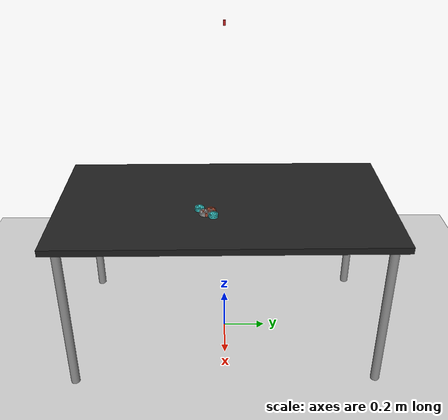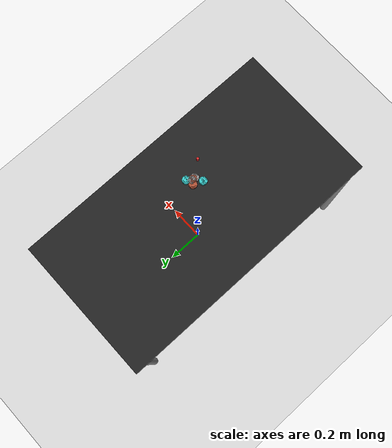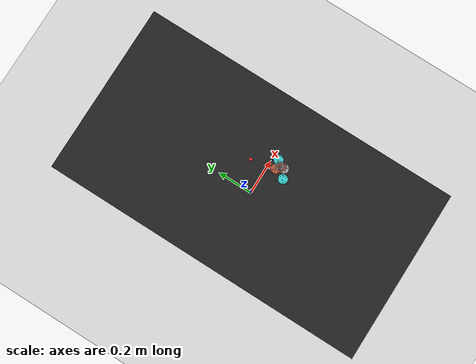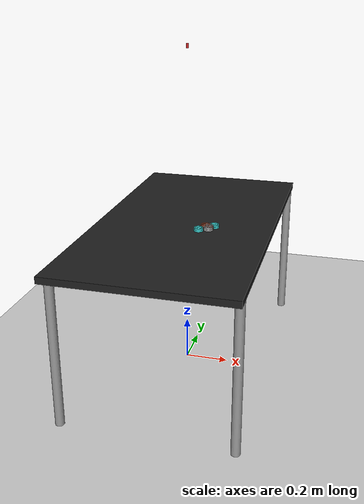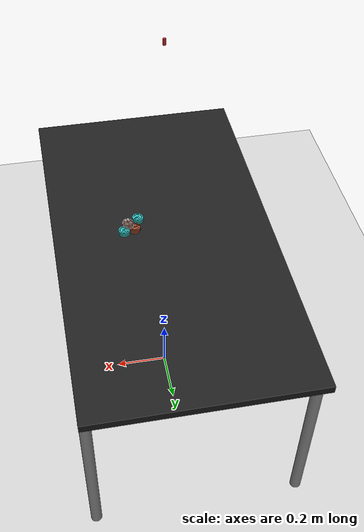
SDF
<?xml version="1.0" ?>
<sdf version="1.5">
  <world name="default">
    <!-- A global light source -->
    <include>
      <uri>model://sun</uri>
    </include>

    <!-- A ground plane -->
    <include>
      <uri>model://ground_plane</uri>
    </include>

    <light name='spotlight' type='spot'>
      <pose frame=''>0 0 2 0 -0 0</pose>
      <diffuse>0.5 0.5 0.5 1</diffuse>
      <specular>0.1 0.1 0.1 1</specular>
      <direction>0 0 -1</direction>
      <attenuation>
        <range>20</range>
        <constant>0.5</constant>
        <linear>0.01</linear>
        <quadratic>0.001</quadratic>
      </attenuation>
      <cast_shadows>1</cast_shadows>
      <spot>
        <inner_angle>0.5</inner_angle>
        <outer_angle>2</outer_angle>
        <falloff>1</falloff>
      </spot>
    </light>

    <include>
      <uri>model://my_table</uri>
      <pose frame=''>0 0 0 0 -0 1.57</pose>
    </include>

    <include>
      <uri>model://my_camera</uri>
      <pose>0 0 1.5 0 1.57 0</pose>
    </include>

    <!-- This portion generated by python script -->

		<include>
    	<uri>model://etherium</uri>
    	<pose frame=''>0.12 -0.09 0.715 0 -0 -1.6</pose>
    </include>

		<include>
    	<uri>model://litecoin</uri>
    	<pose frame=''>0.14 -0.05 0.715 0 -0 -1.6</pose>
    </include>

		<include>
    	<uri>model://zcash</uri>
    	<pose frame=''>0.1 -0.06 0.715 0 -0 -1.6</pose>
    </include>

		<include>
    	<uri>model://monero</uri>
    	<pose frame=''>0.12 -0.08 0.715 0 -0 -1.6</pose>
    </include>

		<include>
    	<uri>model://etherium</uri>
    	<pose frame=''>0.12 -0.07 0.715 0 -0 -1.6</pose>
    </include>

		<include>
    	<uri>model://litecoin</uri>
    	<pose frame=''>0.08 -0.11 0.715 0 -0 -1.6</pose>
    </include>

  </world>
</sdf>

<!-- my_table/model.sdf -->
<sdf version="1.5">
  <model name="my_table">
    <static>true</static>
    <link name="my_table_link">
      <collision name="surface">
        <pose>0 0 0.7 0 0 0</pose>
        <geometry>
          <box>
            <size>1.5 0.8 0.03</size>
          </box>
        </geometry>
        <surface>
          <friction>
            <ode>
              <mu>0.6</mu>
              <mu2>0.6</mu2>
            </ode>
          </friction>
        </surface>
      </collision>
      <visual name="visual1">
        <pose>0 0 0.7 0 0 0</pose>
        <geometry>
          <box>
            <size>1.5 0.8 0.03</size>
          </box>
        </geometry>
        <material>
          <script>
            <uri>file://media/materials/scripts/gazebo.material</uri>
            <name>Gazebo/FlatBlack</name>
          </script>
        </material>
      </visual>
      <collision name="front_left_leg">
        <pose>0.68 0.38 0.35 0 0 0</pose>
        <geometry>
          <cylinder>
            <radius>0.02</radius>
            <length>0.7</length>
          </cylinder>
        </geometry>
      </collision>
      <visual name="front_left_leg">
        <pose>0.68 0.38 0.35 0 0 0</pose>
        <geometry>
          <cylinder>
            <radius>0.02</radius>
            <length>0.7</length>
          </cylinder>
        </geometry>
        <material>
          <script>
            <uri>file://media/materials/scripts/gazebo.material</uri>
            <name>Gazebo/Grey</name>
          </script>
        </material>
      </visual>
      <collision name="front_right_leg">
        <pose>0.68 -0.38 0.35 0 0 0</pose>
        <geometry>
          <cylinder>
            <radius>0.02</radius>
            <length>0.7</length>
          </cylinder>
        </geometry>
      </collision>
      <visual name="front_right_leg">
        <pose>0.68 -0.38 0.35 0 0 0</pose>
        <geometry>
          <cylinder>
            <radius>0.02</radius>
            <length>0.7</length>
          </cylinder>
        </geometry>
        <material>
          <script>
            <uri>file://media/materials/scripts/gazebo.material</uri>
            <name>Gazebo/Grey</name>
          </script>
        </material>
      </visual>
      <collision name="back_right_leg">
        <pose>-0.68 -0.38 0.35 0 0 0</pose>
        <geometry>
          <cylinder>
            <radius>0.02</radius>
            <length>0.7</length>
          </cylinder>
        </geometry>
      </collision>
      <visual name="back_right_leg">
        <pose>-0.68 -0.38 0.35 0 0 0</pose>
        <geometry>
          <cylinder>
            <radius>0.02</radius>
            <length>0.7</length>
          </cylinder>
        </geometry>
        <material>
          <script>
            <uri>file://media/materials/scripts/gazebo.material</uri>
            <name>Gazebo/Grey</name>
          </script>
        </material>
      </visual>
      <collision name="back_left_leg">
        <pose>-0.68 0.38 0.35 0 0 0</pose>
        <geometry>
          <cylinder>
            <radius>0.02</radius>
            <length>0.7</length>
          </cylinder>
        </geometry>
      </collision>
      <visual name="back_left_leg">
        <pose>-0.68 0.38 0.35 0 0 0</pose>
        <geometry>
          <cylinder>
            <radius>0.02</radius>
            <length>0.7</length>
          </cylinder>
        </geometry>
        <material>
          <script>
            <uri>file://media/materials/scripts/gazebo.material</uri>
            <name>Gazebo/Grey</name>
          </script>
        </material>
      </visual>
    </link>
  </model>
</sdf>

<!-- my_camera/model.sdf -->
<sdf version="1.5">
  <model name='my_camera'>
    <static>true</static>
    <pose>0 0 0 0 0 0</pose>
    <link name='my_camera_link'>
      <visual name='visual'>
        <pose frame=''>0 0 0 0 1.57 0</pose>
        <geometry>
          <cylinder>
            <radius>0.005</radius>
            <length>0.02</length>
          </cylinder>
        </geometry>
        <material>
          <script>
            <name>Gazebo/Red</name>
          </script>
        </material>
      </visual>
      <sensor name='my_camera' type='camera'>
        <camera>
          <horizontal_fov>1.57</horizontal_fov>
          <image>
            <width>1920</width>
            <height>1080</height>
          </image>
          <clip>
            <near>0.1</near>
            <far>100</far>
          </clip>
          <noise>
            <type>gaussian</type>
            <mean>0.0</mean>
            <stddev>0.0</stddev>
          </noise>
        </camera>
        <plugin name="camera_controller" filename="libgazebo_ros_camera.so">
          <always_on>1</always_on>
          <update_rate>30</update_rate>
          <cameraName>camera</cameraName>
          <imageTopicName>image_raw</imageTopicName>
          <cameraInfoTopicName>camera_info</cameraInfoTopicName>
          <frameName>world</frameName>
        </plugin>
      </sensor>
    </link>
  </model>
</sdf>

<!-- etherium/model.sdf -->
<sdf version="1.5">
  <model name="etherium">
    <link name="etherium_link">
      <pose>0 0 0 0 0 0</pose>
      <inertial>
        <mass>0.010</mass>
        <inertia>
          <ixx>0.0000014233</ixx>
          <ixy>0</ixy>
          <ixz>0</ixz>
          <iyy>0.0000014233</iyy>
          <iyz>0</iyz>
          <izz>0.00000242</izz>
        </inertia>
      </inertial>
      <collision name="collision">
        <geometry>
          <cylinder>
            <radius>0.022000</radius>
            <length>0.032000</length>
          </cylinder>
        </geometry>
	<surface>
	  <friction>
	    <ode>
	      <mu>500.0</mu>
	      <mu2>500.0</mu2>
	      <kp>1000000.0</kp>
	      <kd>1.0</kd>
	      <minDepth>0.001</minDepth>
	    </ode>
	  </friction>
	</surface>
      </collision>
      <visual name="visual">
	<pose frame=''>0 0 -0.016 0 -0 0</pose>
        <geometry>
          <mesh>
            <scale>0.0004 0.0004 0.004</scale>
            <uri>model://etherium/meshes/etherium.stl</uri>
          </mesh>
  	</geometry>
	<material>
	  <script>
	    <name>Gazebo/Grey</name>
	  </script>
	</material>
      </visual>
    </link>
  </model>
</sdf>

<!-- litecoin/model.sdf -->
<sdf version="1.5">
  <model name="litecoin">
    <link name="litecoin_link">
      <pose>0 0 0 0 0 0</pose>
      <inertial>
        <mass>0.010</mass>
        <inertia>
          <ixx>0.0000014233</ixx>
          <ixy>0</ixy>
          <ixz>0</ixz>
          <iyy>0.0000014233</iyy>
          <iyz>0</iyz>
          <izz>0.00000242</izz>
        </inertia>
      </inertial>
      <collision name="collision">
        <geometry>
          <cylinder>
            <radius>0.022000</radius>
            <length>0.032000</length>
          </cylinder>
        </geometry>
	<surface>
	  <friction>
	    <ode>
	      <mu>500.0</mu>
	      <mu2>500.0</mu2>
	      <kp>1000000.0</kp>
	      <kd>1.0</kd>
	      <minDepth>0.001</minDepth>
	    </ode>
	  </friction>
	</surface>
      </collision>
      <visual name="visual">
	<pose frame=''>0 0 -0.016 0 -0 0</pose>
        <geometry>
          <mesh>
            <scale>0.0004 0.0004 0.004</scale>
            <uri>model://litecoin/meshes/litecoin.stl</uri>
          </mesh>
  	</geometry>
	<material>
	  <script>
	    <name>Gazebo/Turquoise</name>
	  </script>
	</material>
      </visual>
    </link>
  </model>
</sdf>

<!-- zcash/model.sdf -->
<sdf version="1.5">
  <model name="zcash">
    <link name="zcash_link">
      <pose>0 0 0 0 0 0</pose>
      <inertial>
        <mass>0.010</mass>
        <inertia>
          <ixx>0.0000014233</ixx>
          <ixy>0</ixy>
          <ixz>0</ixz>
          <iyy>0.0000014233</iyy>
          <iyz>0</iyz>
          <izz>0.00000242</izz>
        </inertia>
      </inertial>
      <collision name="collision">
        <geometry>
          <cylinder>
            <radius>0.022000</radius>
            <length>0.032000</length>
          </cylinder>
        </geometry>
	<surface>
	  <friction>
	    <ode>
	      <mu>500.0</mu>
	      <mu2>500.0</mu2>
	      <kp>1000000.0</kp>
	      <kd>1.0</kd>
	      <minDepth>0.001</minDepth>
	    </ode>
	  </friction>
	</surface>
      </collision>
      <visual name="visual">
	<pose frame=''>0 0 -0.016 0 -0 0</pose>
        <geometry>
          <mesh>
            <scale>0.0004 0.0004 0.004</scale>
            <uri>model://zcash/meshes/zcash.stl</uri>
          </mesh>
  	</geometry>
	<material>
	  <script>
	    <name>Gazebo/Bricks</name>
	  </script>
	</material>
      </visual>
    </link>
  </model>
</sdf>

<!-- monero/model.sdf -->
<sdf version="1.5">
  <model name="monero">
    <link name="monero_link">
      <pose>0 0 0 0 0 0</pose>
      <inertial>
        <mass>0.010</mass>
        <inertia>
          <ixx>0.0000014233</ixx>
          <ixy>0</ixy>
          <ixz>0</ixz>
          <iyy>0.0000014233</iyy>
          <iyz>0</iyz>
          <izz>0.00000242</izz>
        </inertia>
      </inertial>
      <collision name="collision">
        <geometry>
          <cylinder>
            <radius>0.022000</radius>
            <length>0.032000</length>
          </cylinder>
        </geometry>
	<surface>
	  <friction>
	    <ode>
	      <mu>500.0</mu>
	      <mu2>500.0</mu2>
	      <kp>1000000.0</kp>
	      <kd>1.0</kd>
	      <minDepth>0.001</minDepth>
	    </ode>
	  </friction>
	</surface>
      </collision>
      <visual name="visual">
	<pose frame=''>0 0 -0.016 0 -0 0</pose>
        <geometry>
          <mesh>
            <scale>0.0004 0.0004 0.004</scale>
            <uri>model://monero/meshes/monero.stl</uri>
          </mesh>
  	</geometry>
	<material>
	  <script>
	    <name>Gazebo/Bricks</name>
	  </script>
	</material>
      </visual>
    </link>
  </model>
</sdf>
